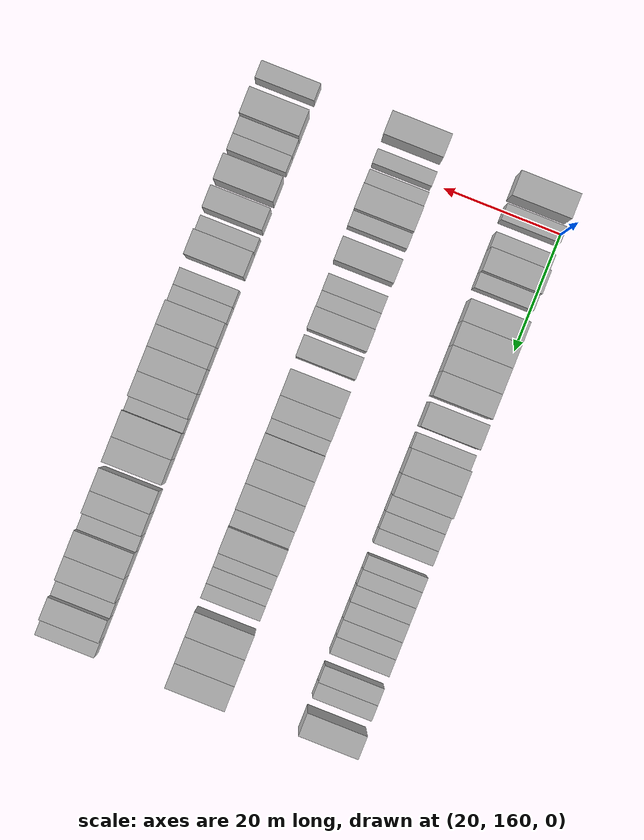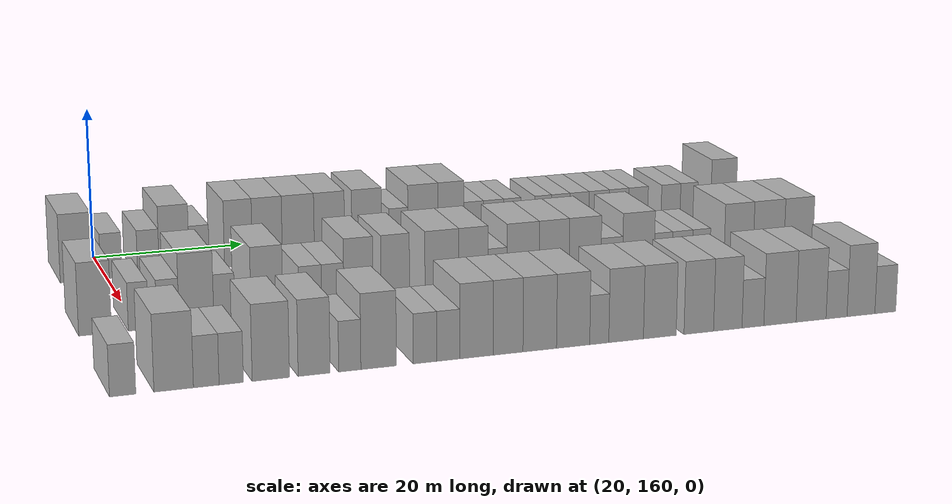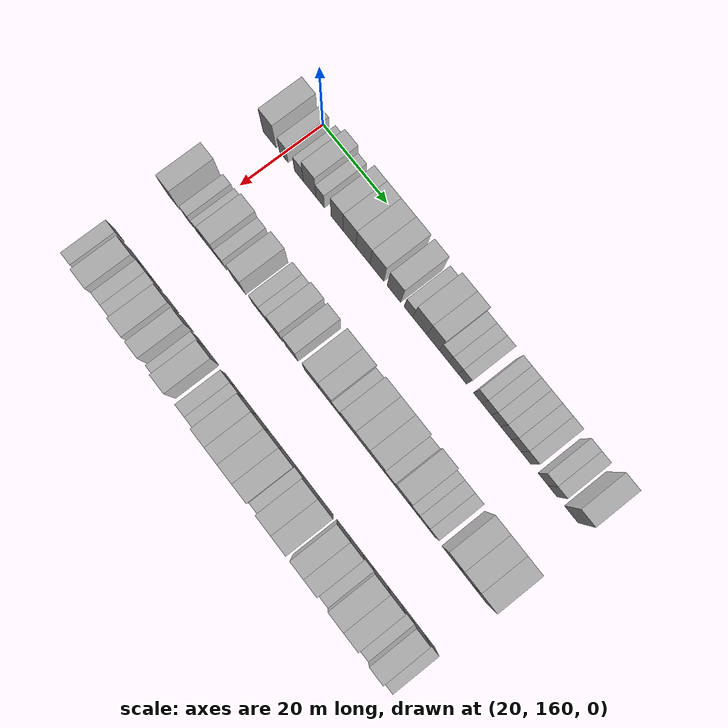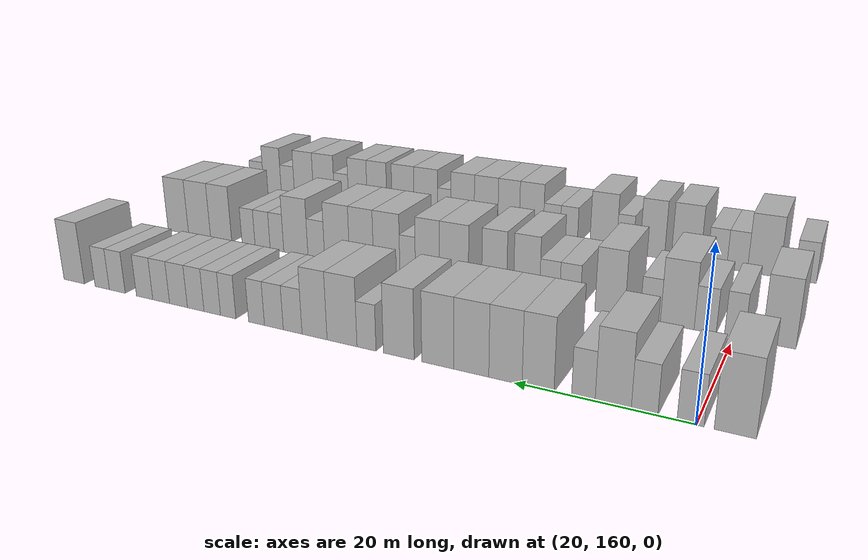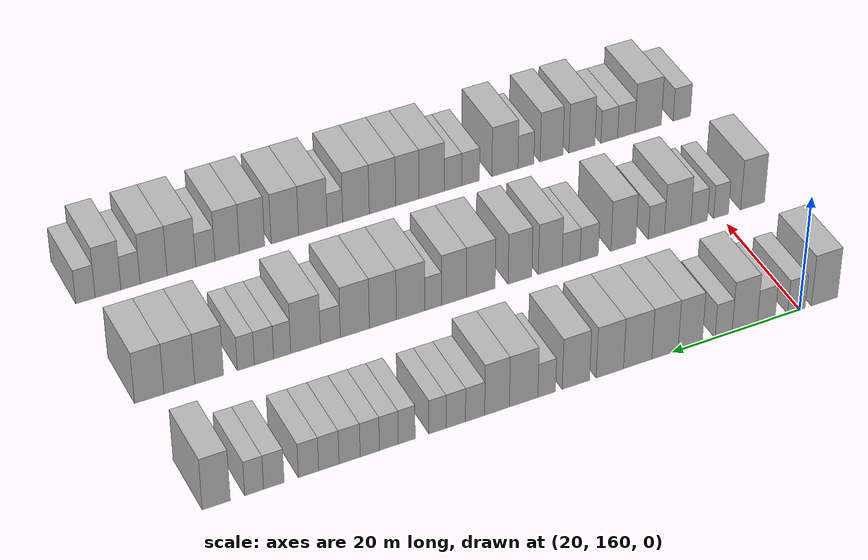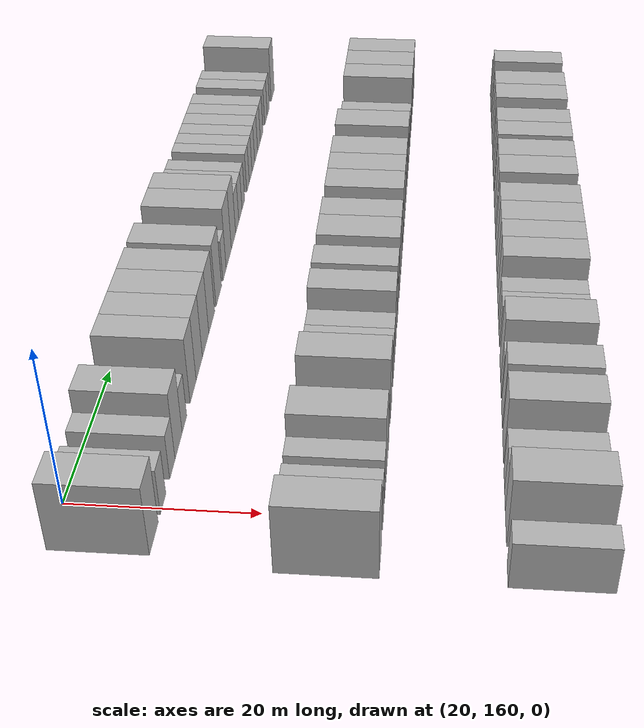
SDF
<sdf version="1.6">
 <world name="default">
  <model name="building_99">
   <static>1</static>
   <pose>25.0000 156.1459 0 0.000000 0.000000 0.000000</pose>
   <link name="link">
    <pose>0 0 4.50 0 0 0</pose>
    <collision name="collision"><geometry><box><size>10.0000 4.1679 9.0000</size></box></geometry></collision>
    <visual name="visual">
     <cast_shadows>0</cast_shadows>
     <geometry><box><size>10.0000 4.1679 9.0000</size></box></geometry>
     <material>
      <script>
       <uri>model://HANNAS_wall/materials/scripts</uri>
       <uri>model://HANNAS_wall/materials/textures</uri>
       <name>vrc/HANNAS_wall</name>
      </script>
     </material>
    </visual>
   </link>
  </model>
  <model name="building_100">
   <static>1</static>
   <pose>25.0000 160.6145 0 0.000000 0.000000 0.000000</pose>
   <link name="link">
    <pose>0 0 3.00 0 0 0</pose>
    <collision name="collision"><geometry><box><size>10.0000 2.7693 6.0000</size></box></geometry></collision>
    <visual name="visual">
     <cast_shadows>0</cast_shadows>
     <geometry><box><size>10.0000 2.7693 6.0000</size></box></geometry>
     <material>
      <script>
       <uri>model://HANNAS_wall/materials/scripts</uri>
       <uri>model://HANNAS_wall/materials/textures</uri>
       <name>vrc/HANNAS_wall</name>
      </script>
     </material>
    </visual>
   </link>
  </model>
  <model name="building_101">
   <static>1</static>
   <pose>25.0000 165.4070 0 0.000000 0.000000 0.000000</pose>
   <link name="link">
    <pose>0 0 3.00 0 0 0</pose>
    <collision name="collision"><geometry><box><size>10.0000 2.8158 6.0000</size></box></geometry></collision>
    <visual name="visual">
     <cast_shadows>0</cast_shadows>
     <geometry><box><size>10.0000 2.8158 6.0000</size></box></geometry>
     <material>
      <script>
       <uri>model://HANNAS_wall/materials/scripts</uri>
       <uri>model://HANNAS_wall/materials/textures</uri>
       <name>vrc/HANNAS_wall</name>
      </script>
     </material>
    </visual>
   </link>
  </model>
  <model name="building_102">
   <static>1</static>
   <pose>25.0000 168.7871 0 0.000000 0.000000 0.000000</pose>
   <link name="link">
    <pose>0 0 4.50 0 0 0</pose>
    <collision name="collision"><geometry><box><size>10.0000 3.9444 9.0000</size></box></geometry></collision>
    <visual name="visual">
     <cast_shadows>0</cast_shadows>
     <geometry><box><size>10.0000 3.9444 9.0000</size></box></geometry>
     <material>
      <script>
       <uri>model://HANNAS_wall/materials/scripts</uri>
       <uri>model://HANNAS_wall/materials/textures</uri>
       <name>vrc/HANNAS_wall</name>
      </script>
     </material>
    </visual>
   </link>
  </model>
  <model name="building_103">
   <static>1</static>
   <pose>25.0000 172.0795 0 0.000000 0.000000 0.000000</pose>
   <link name="link">
    <pose>0 0 3.00 0 0 0</pose>
    <collision name="collision"><geometry><box><size>10.0000 2.6404 6.0000</size></box></geometry></collision>
    <visual name="visual">
     <cast_shadows>0</cast_shadows>
     <geometry><box><size>10.0000 2.6404 6.0000</size></box></geometry>
     <material>
      <script>
       <uri>model://HANNAS_wall/materials/scripts</uri>
       <uri>model://HANNAS_wall/materials/textures</uri>
       <name>vrc/HANNAS_wall</name>
      </script>
     </material>
    </visual>
   </link>
  </model>
  <model name="building_104">
   <static>1</static>
   <pose>25.0000 177.2628 0 0.000000 0.000000 0.000000</pose>
   <link name="link">
    <pose>0 0 4.50 0 0 0</pose>
    <collision name="collision"><geometry><box><size>10.0000 3.7262 9.0000</size></box></geometry></collision>
    <visual name="visual">
     <cast_shadows>0</cast_shadows>
     <geometry><box><size>10.0000 3.7262 9.0000</size></box></geometry>
     <material>
      <script>
       <uri>model://HANNAS_wall/materials/scripts</uri>
       <uri>model://HANNAS_wall/materials/textures</uri>
       <name>vrc/HANNAS_wall</name>
      </script>
     </material>
    </visual>
   </link>
  </model>
  <model name="building_105">
   <static>1</static>
   <pose>25.0000 181.1314 0 0.000000 0.000000 0.000000</pose>
   <link name="link">
    <pose>0 0 4.50 0 0 0</pose>
    <collision name="collision"><geometry><box><size>10.0000 4.0110 9.0000</size></box></geometry></collision>
    <visual name="visual">
     <cast_shadows>0</cast_shadows>
     <geometry><box><size>10.0000 4.0110 9.0000</size></box></geometry>
     <material>
      <script>
       <uri>model://HANNAS_wall/materials/scripts</uri>
       <uri>model://HANNAS_wall/materials/textures</uri>
       <name>vrc/HANNAS_wall</name>
      </script>
     </material>
    </visual>
   </link>
  </model>
  <model name="building_106">
   <static>1</static>
   <pose>25.0000 185.3044 0 0.000000 0.000000 0.000000</pose>
   <link name="link">
    <pose>0 0 4.50 0 0 0</pose>
    <collision name="collision"><geometry><box><size>10.0000 4.3349 9.0000</size></box></geometry></collision>
    <visual name="visual">
     <cast_shadows>0</cast_shadows>
     <geometry><box><size>10.0000 4.3349 9.0000</size></box></geometry>
     <material>
      <script>
       <uri>model://HANNAS_wall/materials/scripts</uri>
       <uri>model://HANNAS_wall/materials/textures</uri>
       <name>vrc/HANNAS_wall</name>
      </script>
     </material>
    </visual>
   </link>
  </model>
  <model name="building_107">
   <static>1</static>
   <pose>25.0000 189.5412 0 0.000000 0.000000 0.000000</pose>
   <link name="link">
    <pose>0 0 4.50 0 0 0</pose>
    <collision name="collision"><geometry><box><size>10.0000 4.1389 9.0000</size></box></geometry></collision>
    <visual name="visual">
     <cast_shadows>0</cast_shadows>
     <geometry><box><size>10.0000 4.1389 9.0000</size></box></geometry>
     <material>
      <script>
       <uri>model://HANNAS_wall/materials/scripts</uri>
       <uri>model://HANNAS_wall/materials/textures</uri>
       <name>vrc/HANNAS_wall</name>
      </script>
     </material>
    </visual>
   </link>
  </model>
  <model name="building_108">
   <static>1</static>
   <pose>25.0000 194.6650 0 0.000000 0.000000 0.000000</pose>
   <link name="link">
    <pose>0 0 4.50 0 0 0</pose>
    <collision name="collision"><geometry><box><size>10.0000 4.1087 9.0000</size></box></geometry></collision>
    <visual name="visual">
     <cast_shadows>0</cast_shadows>
     <geometry><box><size>10.0000 4.1087 9.0000</size></box></geometry>
     <material>
      <script>
       <uri>model://HANNAS_wall/materials/scripts</uri>
       <uri>model://HANNAS_wall/materials/textures</uri>
       <name>vrc/HANNAS_wall</name>
      </script>
     </material>
    </visual>
   </link>
  </model>
  <model name="building_109">
   <static>1</static>
   <pose>25.0000 199.0300 0 0.000000 0.000000 0.000000</pose>
   <link name="link">
    <pose>0 0 3.00 0 0 0</pose>
    <collision name="collision"><geometry><box><size>10.0000 2.6212 6.0000</size></box></geometry></collision>
    <visual name="visual">
     <cast_shadows>0</cast_shadows>
     <geometry><box><size>10.0000 2.6212 6.0000</size></box></geometry>
     <material>
      <script>
       <uri>model://HANNAS_wall/materials/scripts</uri>
       <uri>model://HANNAS_wall/materials/textures</uri>
       <name>vrc/HANNAS_wall</name>
      </script>
     </material>
    </visual>
   </link>
  </model>
  <model name="building_110">
   <static>1</static>
   <pose>25.0000 202.4560 0 0.000000 0.000000 0.000000</pose>
   <link name="link">
    <pose>0 0 4.50 0 0 0</pose>
    <collision name="collision"><geometry><box><size>10.0000 4.2308 9.0000</size></box></geometry></collision>
    <visual name="visual">
     <cast_shadows>0</cast_shadows>
     <geometry><box><size>10.0000 4.2308 9.0000</size></box></geometry>
     <material>
      <script>
       <uri>model://HANNAS_wall/materials/scripts</uri>
       <uri>model://HANNAS_wall/materials/textures</uri>
       <name>vrc/HANNAS_wall</name>
      </script>
     </material>
    </visual>
   </link>
  </model>
  <model name="building_111">
   <static>1</static>
   <pose>25.0000 206.3911 0 0.000000 0.000000 0.000000</pose>
   <link name="link">
    <pose>0 0 4.50 0 0 0</pose>
    <collision name="collision"><geometry><box><size>10.0000 3.6393 9.0000</size></box></geometry></collision>
    <visual name="visual">
     <cast_shadows>0</cast_shadows>
     <geometry><box><size>10.0000 3.6393 9.0000</size></box></geometry>
     <material>
      <script>
       <uri>model://HANNAS_wall/materials/scripts</uri>
       <uri>model://HANNAS_wall/materials/textures</uri>
       <name>vrc/HANNAS_wall</name>
      </script>
     </material>
    </visual>
   </link>
  </model>
  <model name="building_112">
   <static>1</static>
   <pose>25.0000 209.6090 0 0.000000 0.000000 0.000000</pose>
   <link name="link">
    <pose>0 0 3.00 0 0 0</pose>
    <collision name="collision"><geometry><box><size>10.0000 2.7966 6.0000</size></box></geometry></collision>
    <visual name="visual">
     <cast_shadows>0</cast_shadows>
     <geometry><box><size>10.0000 2.7966 6.0000</size></box></geometry>
     <material>
      <script>
       <uri>model://HANNAS_wall/materials/scripts</uri>
       <uri>model://HANNAS_wall/materials/textures</uri>
       <name>vrc/HANNAS_wall</name>
      </script>
     </material>
    </visual>
   </link>
  </model>
  <model name="building_113">
   <static>1</static>
   <pose>25.0000 212.4356 0 0.000000 0.000000 0.000000</pose>
   <link name="link">
    <pose>0 0 3.00 0 0 0</pose>
    <collision name="collision"><geometry><box><size>10.0000 2.8567 6.0000</size></box></geometry></collision>
    <visual name="visual">
     <cast_shadows>0</cast_shadows>
     <geometry><box><size>10.0000 2.8567 6.0000</size></box></geometry>
     <material>
      <script>
       <uri>model://HANNAS_wall/materials/scripts</uri>
       <uri>model://HANNAS_wall/materials/textures</uri>
       <name>vrc/HANNAS_wall</name>
      </script>
     </material>
    </visual>
   </link>
  </model>
  <model name="building_114">
   <static>1</static>
   <pose>25.0000 215.0895 0 0.000000 0.000000 0.000000</pose>
   <link name="link">
    <pose>0 0 3.00 0 0 0</pose>
    <collision name="collision"><geometry><box><size>10.0000 2.4511 6.0000</size></box></geometry></collision>
    <visual name="visual">
     <cast_shadows>0</cast_shadows>
     <geometry><box><size>10.0000 2.4511 6.0000</size></box></geometry>
     <material>
      <script>
       <uri>model://HANNAS_wall/materials/scripts</uri>
       <uri>model://HANNAS_wall/materials/textures</uri>
       <name>vrc/HANNAS_wall</name>
      </script>
     </material>
    </visual>
   </link>
  </model>
  <model name="building_115">
   <static>1</static>
   <pose>25.0000 219.5354 0 0.000000 0.000000 0.000000</pose>
   <link name="link">
    <pose>0 0 3.00 0 0 0</pose>
    <collision name="collision"><geometry><box><size>10.0000 2.4409 6.0000</size></box></geometry></collision>
    <visual name="visual">
     <cast_shadows>0</cast_shadows>
     <geometry><box><size>10.0000 2.4409 6.0000</size></box></geometry>
     <material>
      <script>
       <uri>model://HANNAS_wall/materials/scripts</uri>
       <uri>model://HANNAS_wall/materials/textures</uri>
       <name>vrc/HANNAS_wall</name>
      </script>
     </material>
    </visual>
   </link>
  </model>
  <model name="building_116">
   <static>1</static>
   <pose>25.0000 222.1003 0 0.000000 0.000000 0.000000</pose>
   <link name="link">
    <pose>0 0 3.00 0 0 0</pose>
    <collision name="collision"><geometry><box><size>10.0000 2.6889 6.0000</size></box></geometry></collision>
    <visual name="visual">
     <cast_shadows>0</cast_shadows>
     <geometry><box><size>10.0000 2.6889 6.0000</size></box></geometry>
     <material>
      <script>
       <uri>model://HANNAS_wall/materials/scripts</uri>
       <uri>model://HANNAS_wall/materials/textures</uri>
       <name>vrc/HANNAS_wall</name>
      </script>
     </material>
    </visual>
   </link>
  </model>
  <model name="building_117">
   <static>1</static>
   <pose>25.0000 224.8164 0 0.000000 0.000000 0.000000</pose>
   <link name="link">
    <pose>0 0 3.00 0 0 0</pose>
    <collision name="collision"><geometry><box><size>10.0000 2.7432 6.0000</size></box></geometry></collision>
    <visual name="visual">
     <cast_shadows>0</cast_shadows>
     <geometry><box><size>10.0000 2.7432 6.0000</size></box></geometry>
     <material>
      <script>
       <uri>model://HANNAS_wall/materials/scripts</uri>
       <uri>model://HANNAS_wall/materials/textures</uri>
       <name>vrc/HANNAS_wall</name>
      </script>
     </material>
    </visual>
   </link>
  </model>
  <model name="building_118">
   <static>1</static>
   <pose>25.0000 227.6877 0 0.000000 0.000000 0.000000</pose>
   <link name="link">
    <pose>0 0 3.00 0 0 0</pose>
    <collision name="collision"><geometry><box><size>10.0000 2.9994 6.0000</size></box></geometry></collision>
    <visual name="visual">
     <cast_shadows>0</cast_shadows>
     <geometry><box><size>10.0000 2.9994 6.0000</size></box></geometry>
     <material>
      <script>
       <uri>model://HANNAS_wall/materials/scripts</uri>
       <uri>model://HANNAS_wall/materials/textures</uri>
       <name>vrc/HANNAS_wall</name>
      </script>
     </material>
    </visual>
   </link>
  </model>
  <model name="building_119">
   <static>1</static>
   <pose>25.0000 230.6287 0 0.000000 0.000000 0.000000</pose>
   <link name="link">
    <pose>0 0 3.00 0 0 0</pose>
    <collision name="collision"><geometry><box><size>10.0000 2.8824 6.0000</size></box></geometry></collision>
    <visual name="visual">
     <cast_shadows>0</cast_shadows>
     <geometry><box><size>10.0000 2.8824 6.0000</size></box></geometry>
     <material>
      <script>
       <uri>model://HANNAS_wall/materials/scripts</uri>
       <uri>model://HANNAS_wall/materials/textures</uri>
       <name>vrc/HANNAS_wall</name>
      </script>
     </material>
    </visual>
   </link>
  </model>
  <model name="building_120">
   <static>1</static>
   <pose>25.0000 233.4946 0 0.000000 0.000000 0.000000</pose>
   <link name="link">
    <pose>0 0 3.00 0 0 0</pose>
    <collision name="collision"><geometry><box><size>10.0000 2.8493 6.0000</size></box></geometry></collision>
    <visual name="visual">
     <cast_shadows>0</cast_shadows>
     <geometry><box><size>10.0000 2.8493 6.0000</size></box></geometry>
     <material>
      <script>
       <uri>model://HANNAS_wall/materials/scripts</uri>
       <uri>model://HANNAS_wall/materials/textures</uri>
       <name>vrc/HANNAS_wall</name>
      </script>
     </material>
    </visual>
   </link>
  </model>
  <model name="building_121">
   <static>1</static>
   <pose>25.0000 238.3489 0 0.000000 0.000000 0.000000</pose>
   <link name="link">
    <pose>0 0 3.00 0 0 0</pose>
    <collision name="collision"><geometry><box><size>10.0000 2.8593 6.0000</size></box></geometry></collision>
    <visual name="visual">
     <cast_shadows>0</cast_shadows>
     <geometry><box><size>10.0000 2.8593 6.0000</size></box></geometry>
     <material>
      <script>
       <uri>model://HANNAS_wall/materials/scripts</uri>
       <uri>model://HANNAS_wall/materials/textures</uri>
       <name>vrc/HANNAS_wall</name>
      </script>
     </material>
    </visual>
   </link>
  </model>
  <model name="building_122">
   <static>1</static>
   <pose>25.0000 241.0852 0 0.000000 0.000000 0.000000</pose>
   <link name="link">
    <pose>0 0 3.00 0 0 0</pose>
    <collision name="collision"><geometry><box><size>10.0000 2.6133 6.0000</size></box></geometry></collision>
    <visual name="visual">
     <cast_shadows>0</cast_shadows>
     <geometry><box><size>10.0000 2.6133 6.0000</size></box></geometry>
     <material>
      <script>
       <uri>model://HANNAS_wall/materials/scripts</uri>
       <uri>model://HANNAS_wall/materials/textures</uri>
       <name>vrc/HANNAS_wall</name>
      </script>
     </material>
    </visual>
   </link>
  </model>
  <model name="building_123">
   <static>1</static>
   <pose>25.0000 246.3215 0 0.000000 0.000000 0.000000</pose>
   <link name="link">
    <pose>0 0 4.50 0 0 0</pose>
    <collision name="collision"><geometry><box><size>10.0000 3.8594 9.0000</size></box></geometry></collision>
    <visual name="visual">
     <cast_shadows>0</cast_shadows>
     <geometry><box><size>10.0000 3.8594 9.0000</size></box></geometry>
     <material>
      <script>
       <uri>model://HANNAS_wall/materials/scripts</uri>
       <uri>model://HANNAS_wall/materials/textures</uri>
       <name>vrc/HANNAS_wall</name>
      </script>
     </material>
    </visual>
   </link>
  </model>
  <model name="building_226">
   <static>1</static>
   <pose>47.0000 154.7542 0 0.000000 0.000000 0.000000</pose>
   <link name="link">
    <pose>0 0 4.50 0 0 0</pose>
    <collision name="collision"><geometry><box><size>10.0000 3.9195 9.0000</size></box></geometry></collision>
    <visual name="visual">
     <cast_shadows>0</cast_shadows>
     <geometry><box><size>10.0000 3.9195 9.0000</size></box></geometry>
     <material>
      <script>
       <uri>model://HANNAS_wall/materials/scripts</uri>
       <uri>model://HANNAS_wall/materials/textures</uri>
       <name>vrc/HANNAS_wall</name>
      </script>
     </material>
    </visual>
   </link>
  </model>
  <model name="building_227">
   <static>1</static>
   <pose>47.0000 159.9321 0 0.000000 0.000000 0.000000</pose>
   <link name="link">
    <pose>0 0 3.00 0 0 0</pose>
    <collision name="collision"><geometry><box><size>10.0000 2.4363 6.0000</size></box></geometry></collision>
    <visual name="visual">
     <cast_shadows>0</cast_shadows>
     <geometry><box><size>10.0000 2.4363 6.0000</size></box></geometry>
     <material>
      <script>
       <uri>model://HANNAS_wall/materials/scripts</uri>
       <uri>model://HANNAS_wall/materials/textures</uri>
       <name>vrc/HANNAS_wall</name>
      </script>
     </material>
    </visual>
   </link>
  </model>
  <model name="building_228">
   <static>1</static>
   <pose>47.0000 163.4997 0 0.000000 0.000000 0.000000</pose>
   <link name="link">
    <pose>0 0 3.00 0 0 0</pose>
    <collision name="collision"><geometry><box><size>10.0000 2.6988 6.0000</size></box></geometry></collision>
    <visual name="visual">
     <cast_shadows>0</cast_shadows>
     <geometry><box><size>10.0000 2.6988 6.0000</size></box></geometry>
     <material>
      <script>
       <uri>model://HANNAS_wall/materials/scripts</uri>
       <uri>model://HANNAS_wall/materials/textures</uri>
       <name>vrc/HANNAS_wall</name>
      </script>
     </material>
    </visual>
   </link>
  </model>
  <model name="building_229">
   <static>1</static>
   <pose>47.0000 166.9710 0 0.000000 0.000000 0.000000</pose>
   <link name="link">
    <pose>0 0 4.50 0 0 0</pose>
    <collision name="collision"><geometry><box><size>10.0000 4.2438 9.0000</size></box></geometry></collision>
    <visual name="visual">
     <cast_shadows>0</cast_shadows>
     <geometry><box><size>10.0000 4.2438 9.0000</size></box></geometry>
     <material>
      <script>
       <uri>model://HANNAS_wall/materials/scripts</uri>
       <uri>model://HANNAS_wall/materials/textures</uri>
       <name>vrc/HANNAS_wall</name>
      </script>
     </material>
    </visual>
   </link>
  </model>
  <model name="building_230">
   <static>1</static>
   <pose>47.0000 170.3910 0 0.000000 0.000000 0.000000</pose>
   <link name="link">
    <pose>0 0 3.00 0 0 0</pose>
    <collision name="collision"><geometry><box><size>10.0000 2.5962 6.0000</size></box></geometry></collision>
    <visual name="visual">
     <cast_shadows>0</cast_shadows>
     <geometry><box><size>10.0000 2.5962 6.0000</size></box></geometry>
     <material>
      <script>
       <uri>model://HANNAS_wall/materials/scripts</uri>
       <uri>model://HANNAS_wall/materials/textures</uri>
       <name>vrc/HANNAS_wall</name>
      </script>
     </material>
    </visual>
   </link>
  </model>
  <model name="building_231">
   <static>1</static>
   <pose>47.0000 175.6767 0 0.000000 0.000000 0.000000</pose>
   <link name="link">
    <pose>0 0 4.50 0 0 0</pose>
    <collision name="collision"><geometry><box><size>10.0000 3.9751 9.0000</size></box></geometry></collision>
    <visual name="visual">
     <cast_shadows>0</cast_shadows>
     <geometry><box><size>10.0000 3.9751 9.0000</size></box></geometry>
     <material>
      <script>
       <uri>model://HANNAS_wall/materials/scripts</uri>
       <uri>model://HANNAS_wall/materials/textures</uri>
       <name>vrc/HANNAS_wall</name>
      </script>
     </material>
    </visual>
   </link>
  </model>
  <model name="building_232">
   <static>1</static>
   <pose>47.0000 181.0941 0 0.000000 0.000000 0.000000</pose>
   <link name="link">
    <pose>0 0 3.00 0 0 0</pose>
    <collision name="collision"><geometry><box><size>10.0000 2.8597 6.0000</size></box></geometry></collision>
    <visual name="visual">
     <cast_shadows>0</cast_shadows>
     <geometry><box><size>10.0000 2.8597 6.0000</size></box></geometry>
     <material>
      <script>
       <uri>model://HANNAS_wall/materials/scripts</uri>
       <uri>model://HANNAS_wall/materials/textures</uri>
       <name>vrc/HANNAS_wall</name>
      </script>
     </material>
    </visual>
   </link>
  </model>
  <model name="building_233">
   <static>1</static>
   <pose>47.0000 183.9356 0 0.000000 0.000000 0.000000</pose>
   <link name="link">
    <pose>0 0 3.00 0 0 0</pose>
    <collision name="collision"><geometry><box><size>10.0000 2.8232 6.0000</size></box></geometry></collision>
    <visual name="visual">
     <cast_shadows>0</cast_shadows>
     <geometry><box><size>10.0000 2.8232 6.0000</size></box></geometry>
     <material>
      <script>
       <uri>model://HANNAS_wall/materials/scripts</uri>
       <uri>model://HANNAS_wall/materials/textures</uri>
       <name>vrc/HANNAS_wall</name>
      </script>
     </material>
    </visual>
   </link>
  </model>
  <model name="building_234">
   <static>1</static>
   <pose>47.0000 187.2130 0 0.000000 0.000000 0.000000</pose>
   <link name="link">
    <pose>0 0 4.50 0 0 0</pose>
    <collision name="collision"><geometry><box><size>10.0000 3.7316 9.0000</size></box></geometry></collision>
    <visual name="visual">
     <cast_shadows>0</cast_shadows>
     <geometry><box><size>10.0000 3.7316 9.0000</size></box></geometry>
     <material>
      <script>
       <uri>model://HANNAS_wall/materials/scripts</uri>
       <uri>model://HANNAS_wall/materials/textures</uri>
       <name>vrc/HANNAS_wall</name>
      </script>
     </material>
    </visual>
   </link>
  </model>
  <model name="building_235">
   <static>1</static>
   <pose>47.0000 191.9176 0 0.000000 0.000000 0.000000</pose>
   <link name="link">
    <pose>0 0 4.50 0 0 0</pose>
    <collision name="collision"><geometry><box><size>10.0000 3.6777 9.0000</size></box></geometry></collision>
    <visual name="visual">
     <cast_shadows>0</cast_shadows>
     <geometry><box><size>10.0000 3.6777 9.0000</size></box></geometry>
     <material>
      <script>
       <uri>model://HANNAS_wall/materials/scripts</uri>
       <uri>model://HANNAS_wall/materials/textures</uri>
       <name>vrc/HANNAS_wall</name>
      </script>
     </material>
    </visual>
   </link>
  </model>
  <model name="building_236">
   <static>1</static>
   <pose>47.0000 197.9709 0 0.000000 0.000000 0.000000</pose>
   <link name="link">
    <pose>0 0 4.50 0 0 0</pose>
    <collision name="collision"><geometry><box><size>10.0000 4.4290 9.0000</size></box></geometry></collision>
    <visual name="visual">
     <cast_shadows>0</cast_shadows>
     <geometry><box><size>10.0000 4.4290 9.0000</size></box></geometry>
     <material>
      <script>
       <uri>model://HANNAS_wall/materials/scripts</uri>
       <uri>model://HANNAS_wall/materials/textures</uri>
       <name>vrc/HANNAS_wall</name>
      </script>
     </material>
    </visual>
   </link>
  </model>
  <model name="building_237">
   <static>1</static>
   <pose>47.0000 202.0887 0 0.000000 0.000000 0.000000</pose>
   <link name="link">
    <pose>0 0 4.50 0 0 0</pose>
    <collision name="collision"><geometry><box><size>10.0000 3.8066 9.0000</size></box></geometry></collision>
    <visual name="visual">
     <cast_shadows>0</cast_shadows>
     <geometry><box><size>10.0000 3.8066 9.0000</size></box></geometry>
     <material>
      <script>
       <uri>model://HANNAS_wall/materials/scripts</uri>
       <uri>model://HANNAS_wall/materials/textures</uri>
       <name>vrc/HANNAS_wall</name>
      </script>
     </material>
    </visual>
   </link>
  </model>
  <model name="building_238">
   <static>1</static>
   <pose>47.0000 205.2436 0 0.000000 0.000000 0.000000</pose>
   <link name="link">
    <pose>0 0 3.00 0 0 0</pose>
    <collision name="collision"><geometry><box><size>10.0000 2.5033 6.0000</size></box></geometry></collision>
    <visual name="visual">
     <cast_shadows>0</cast_shadows>
     <geometry><box><size>10.0000 2.5033 6.0000</size></box></geometry>
     <material>
      <script>
       <uri>model://HANNAS_wall/materials/scripts</uri>
       <uri>model://HANNAS_wall/materials/textures</uri>
       <name>vrc/HANNAS_wall</name>
      </script>
     </material>
    </visual>
   </link>
  </model>
  <model name="building_239">
   <static>1</static>
   <pose>47.0000 208.6481 0 0.000000 0.000000 0.000000</pose>
   <link name="link">
    <pose>0 0 4.50 0 0 0</pose>
    <collision name="collision"><geometry><box><size>10.0000 4.3056 9.0000</size></box></geometry></collision>
    <visual name="visual">
     <cast_shadows>0</cast_shadows>
     <geometry><box><size>10.0000 4.3056 9.0000</size></box></geometry>
     <material>
      <script>
       <uri>model://HANNAS_wall/materials/scripts</uri>
       <uri>model://HANNAS_wall/materials/textures</uri>
       <name>vrc/HANNAS_wall</name>
      </script>
     </material>
    </visual>
   </link>
  </model>
  <model name="building_240">
   <static>1</static>
   <pose>47.0000 212.8194 0 0.000000 0.000000 0.000000</pose>
   <link name="link">
    <pose>0 0 4.50 0 0 0</pose>
    <collision name="collision"><geometry><box><size>10.0000 4.0370 9.0000</size></box></geometry></collision>
    <visual name="visual">
     <cast_shadows>0</cast_shadows>
     <geometry><box><size>10.0000 4.0370 9.0000</size></box></geometry>
     <material>
      <script>
       <uri>model://HANNAS_wall/materials/scripts</uri>
       <uri>model://HANNAS_wall/materials/textures</uri>
       <name>vrc/HANNAS_wall</name>
      </script>
     </material>
    </visual>
   </link>
  </model>
  <model name="building_241">
   <static>1</static>
   <pose>47.0000 217.0004 0 0.000000 0.000000 0.000000</pose>
   <link name="link">
    <pose>0 0 4.50 0 0 0</pose>
    <collision name="collision"><geometry><box><size>10.0000 4.3250 9.0000</size></box></geometry></collision>
    <visual name="visual">
     <cast_shadows>0</cast_shadows>
     <geometry><box><size>10.0000 4.3250 9.0000</size></box></geometry>
     <material>
      <script>
       <uri>model://HANNAS_wall/materials/scripts</uri>
       <uri>model://HANNAS_wall/materials/textures</uri>
       <name>vrc/HANNAS_wall</name>
      </script>
     </material>
    </visual>
   </link>
  </model>
  <model name="building_242">
   <static>1</static>
   <pose>47.0000 220.6399 0 0.000000 0.000000 0.000000</pose>
   <link name="link">
    <pose>0 0 3.00 0 0 0</pose>
    <collision name="collision"><geometry><box><size>10.0000 2.9540 6.0000</size></box></geometry></collision>
    <visual name="visual">
     <cast_shadows>0</cast_shadows>
     <geometry><box><size>10.0000 2.9540 6.0000</size></box></geometry>
     <material>
      <script>
       <uri>model://HANNAS_wall/materials/scripts</uri>
       <uri>model://HANNAS_wall/materials/textures</uri>
       <name>vrc/HANNAS_wall</name>
      </script>
     </material>
    </visual>
   </link>
  </model>
  <model name="building_243">
   <static>1</static>
   <pose>47.0000 224.2985 0 0.000000 0.000000 0.000000</pose>
   <link name="link">
    <pose>0 0 4.50 0 0 0</pose>
    <collision name="collision"><geometry><box><size>10.0000 4.3633 9.0000</size></box></geometry></collision>
    <visual name="visual">
     <cast_shadows>0</cast_shadows>
     <geometry><box><size>10.0000 4.3633 9.0000</size></box></geometry>
     <material>
      <script>
       <uri>model://HANNAS_wall/materials/scripts</uri>
       <uri>model://HANNAS_wall/materials/textures</uri>
       <name>vrc/HANNAS_wall</name>
      </script>
     </material>
    </visual>
   </link>
  </model>
  <model name="building_244">
   <static>1</static>
   <pose>47.0000 227.7331 0 0.000000 0.000000 0.000000</pose>
   <link name="link">
    <pose>0 0 3.00 0 0 0</pose>
    <collision name="collision"><geometry><box><size>10.0000 2.5059 6.0000</size></box></geometry></collision>
    <visual name="visual">
     <cast_shadows>0</cast_shadows>
     <geometry><box><size>10.0000 2.5059 6.0000</size></box></geometry>
     <material>
      <script>
       <uri>model://HANNAS_wall/materials/scripts</uri>
       <uri>model://HANNAS_wall/materials/textures</uri>
       <name>vrc/HANNAS_wall</name>
      </script>
     </material>
    </visual>
   </link>
  </model>
  <model name="building_245">
   <static>1</static>
   <pose>47.0000 230.3922 0 0.000000 0.000000 0.000000</pose>
   <link name="link">
    <pose>0 0 3.00 0 0 0</pose>
    <collision name="collision"><geometry><box><size>10.0000 2.8123 6.0000</size></box></geometry></collision>
    <visual name="visual">
     <cast_shadows>0</cast_shadows>
     <geometry><box><size>10.0000 2.8123 6.0000</size></box></geometry>
     <material>
      <script>
       <uri>model://HANNAS_wall/materials/scripts</uri>
       <uri>model://HANNAS_wall/materials/textures</uri>
       <name>vrc/HANNAS_wall</name>
      </script>
     </material>
    </visual>
   </link>
  </model>
  <model name="building_246">
   <static>1</static>
   <pose>47.0000 233.0299 0 0.000000 0.000000 0.000000</pose>
   <link name="link">
    <pose>0 0 3.00 0 0 0</pose>
    <collision name="collision"><geometry><box><size>10.0000 2.4630 6.0000</size></box></geometry></collision>
    <visual name="visual">
     <cast_shadows>0</cast_shadows>
     <geometry><box><size>10.0000 2.4630 6.0000</size></box></geometry>
     <material>
      <script>
       <uri>model://HANNAS_wall/materials/scripts</uri>
       <uri>model://HANNAS_wall/materials/textures</uri>
       <name>vrc/HANNAS_wall</name>
      </script>
     </material>
    </visual>
   </link>
  </model>
  <model name="building_247">
   <static>1</static>
   <pose>47.0000 238.3239 0 0.000000 0.000000 0.000000</pose>
   <link name="link">
    <pose>0 0 4.50 0 0 0</pose>
    <collision name="collision"><geometry><box><size>10.0000 4.1250 9.0000</size></box></geometry></collision>
    <visual name="visual">
     <cast_shadows>0</cast_shadows>
     <geometry><box><size>10.0000 4.1250 9.0000</size></box></geometry>
     <material>
      <script>
       <uri>model://HANNAS_wall/materials/scripts</uri>
       <uri>model://HANNAS_wall/materials/textures</uri>
       <name>vrc/HANNAS_wall</name>
      </script>
     </material>
    </visual>
   </link>
  </model>
  <model name="building_248">
   <static>1</static>
   <pose>47.0000 242.5906 0 0.000000 0.000000 0.000000</pose>
   <link name="link">
    <pose>0 0 4.50 0 0 0</pose>
    <collision name="collision"><geometry><box><size>10.0000 4.4084 9.0000</size></box></geometry></collision>
    <visual name="visual">
     <cast_shadows>0</cast_shadows>
     <geometry><box><size>10.0000 4.4084 9.0000</size></box></geometry>
     <material>
      <script>
       <uri>model://HANNAS_wall/materials/scripts</uri>
       <uri>model://HANNAS_wall/materials/textures</uri>
       <name>vrc/HANNAS_wall</name>
      </script>
     </material>
    </visual>
   </link>
  </model>
  <model name="building_249">
   <static>1</static>
   <pose>47.0000 246.8796 0 0.000000 0.000000 0.000000</pose>
   <link name="link">
    <pose>0 0 4.50 0 0 0</pose>
    <collision name="collision"><geometry><box><size>10.0000 4.1695 9.0000</size></box></geometry></collision>
    <visual name="visual">
     <cast_shadows>0</cast_shadows>
     <geometry><box><size>10.0000 4.1695 9.0000</size></box></geometry>
     <material>
      <script>
       <uri>model://HANNAS_wall/materials/scripts</uri>
       <uri>model://HANNAS_wall/materials/textures</uri>
       <name>vrc/HANNAS_wall</name>
      </script>
     </material>
    </visual>
   </link>
  </model>
  <model name="building_348">
   <static>1</static>
   <pose>69.0000 154.0189 0 0.000000 0.000000 0.000000</pose>
   <link name="link">
    <pose>0 0 3.00 0 0 0</pose>
    <collision name="collision"><geometry><box><size>10.0000 2.9185 6.0000</size></box></geometry></collision>
    <visual name="visual">
     <cast_shadows>0</cast_shadows>
     <geometry><box><size>10.0000 2.9185 6.0000</size></box></geometry>
     <material>
      <script>
       <uri>model://HANNAS_wall/materials/scripts</uri>
       <uri>model://HANNAS_wall/materials/textures</uri>
       <name>vrc/HANNAS_wall</name>
      </script>
     </material>
    </visual>
   </link>
  </model>
  <model name="building_349">
   <static>1</static>
   <pose>69.0000 159.6898 0 0.000000 0.000000 0.000000</pose>
   <link name="link">
    <pose>0 0 4.50 0 0 0</pose>
    <collision name="collision"><geometry><box><size>10.0000 4.4233 9.0000</size></box></geometry></collision>
    <visual name="visual">
     <cast_shadows>0</cast_shadows>
     <geometry><box><size>10.0000 4.4233 9.0000</size></box></geometry>
     <material>
      <script>
       <uri>model://HANNAS_wall/materials/scripts</uri>
       <uri>model://HANNAS_wall/materials/textures</uri>
       <name>vrc/HANNAS_wall</name>
      </script>
     </material>
    </visual>
   </link>
  </model>
  <model name="building_350">
   <static>1</static>
   <pose>69.0000 163.3485 0 0.000000 0.000000 0.000000</pose>
   <link name="link">
    <pose>0 0 3.00 0 0 0</pose>
    <collision name="collision"><geometry><box><size>10.0000 2.8940 6.0000</size></box></geometry></collision>
    <visual name="visual">
     <cast_shadows>0</cast_shadows>
     <geometry><box><size>10.0000 2.8940 6.0000</size></box></geometry>
     <material>
      <script>
       <uri>model://HANNAS_wall/materials/scripts</uri>
       <uri>model://HANNAS_wall/materials/textures</uri>
       <name>vrc/HANNAS_wall</name>
      </script>
     </material>
    </visual>
   </link>
  </model>
  <model name="building_351">
   <static>1</static>
   <pose>69.0000 166.1783 0 0.000000 0.000000 0.000000</pose>
   <link name="link">
    <pose>0 0 3.00 0 0 0</pose>
    <collision name="collision"><geometry><box><size>10.0000 2.7656 6.0000</size></box></geometry></collision>
    <visual name="visual">
     <cast_shadows>0</cast_shadows>
     <geometry><box><size>10.0000 2.7656 6.0000</size></box></geometry>
     <material>
      <script>
       <uri>model://HANNAS_wall/materials/scripts</uri>
       <uri>model://HANNAS_wall/materials/textures</uri>
       <name>vrc/HANNAS_wall</name>
      </script>
     </material>
    </visual>
   </link>
  </model>
  <model name="building_352">
   <static>1</static>
   <pose>69.0000 170.7016 0 0.000000 0.000000 0.000000</pose>
   <link name="link">
    <pose>0 0 4.50 0 0 0</pose>
    <collision name="collision"><geometry><box><size>10.0000 4.2811 9.0000</size></box></geometry></collision>
    <visual name="visual">
     <cast_shadows>0</cast_shadows>
     <geometry><box><size>10.0000 4.2811 9.0000</size></box></geometry>
     <material>
      <script>
       <uri>model://HANNAS_wall/materials/scripts</uri>
       <uri>model://HANNAS_wall/materials/textures</uri>
       <name>vrc/HANNAS_wall</name>
      </script>
     </material>
    </visual>
   </link>
  </model>
  <model name="building_353">
   <static>1</static>
   <pose>69.0000 175.7031 0 0.000000 0.000000 0.000000</pose>
   <link name="link">
    <pose>0 0 4.50 0 0 0</pose>
    <collision name="collision"><geometry><box><size>10.0000 3.7219 9.0000</size></box></geometry></collision>
    <visual name="visual">
     <cast_shadows>0</cast_shadows>
     <geometry><box><size>10.0000 3.7219 9.0000</size></box></geometry>
     <material>
      <script>
       <uri>model://HANNAS_wall/materials/scripts</uri>
       <uri>model://HANNAS_wall/materials/textures</uri>
       <name>vrc/HANNAS_wall</name>
      </script>
     </material>
    </visual>
   </link>
  </model>
  <model name="building_354">
   <static>1</static>
   <pose>69.0000 179.8641 0 0.000000 0.000000 0.000000</pose>
   <link name="link">
    <pose>0 0 3.00 0 0 0</pose>
    <collision name="collision"><geometry><box><size>10.0000 2.6000 6.0000</size></box></geometry></collision>
    <visual name="visual">
     <cast_shadows>0</cast_shadows>
     <geometry><box><size>10.0000 2.6000 6.0000</size></box></geometry>
     <material>
      <script>
       <uri>model://HANNAS_wall/materials/scripts</uri>
       <uri>model://HANNAS_wall/materials/textures</uri>
       <name>vrc/HANNAS_wall</name>
      </script>
     </material>
    </visual>
   </link>
  </model>
  <model name="building_355">
   <static>1</static>
   <pose>69.0000 183.2650 0 0.000000 0.000000 0.000000</pose>
   <link name="link">
    <pose>0 0 4.50 0 0 0</pose>
    <collision name="collision"><geometry><box><size>10.0000 4.2018 9.0000</size></box></geometry></collision>
    <visual name="visual">
     <cast_shadows>0</cast_shadows>
     <geometry><box><size>10.0000 4.2018 9.0000</size></box></geometry>
     <material>
      <script>
       <uri>model://HANNAS_wall/materials/scripts</uri>
       <uri>model://HANNAS_wall/materials/textures</uri>
       <name>vrc/HANNAS_wall</name>
      </script>
     </material>
    </visual>
   </link>
  </model>
  <model name="building_356">
   <static>1</static>
   <pose>69.0000 188.7863 0 0.000000 0.000000 0.000000</pose>
   <link name="link">
    <pose>0 0 3.00 0 0 0</pose>
    <collision name="collision"><geometry><box><size>10.0000 2.8407 6.0000</size></box></geometry></collision>
    <visual name="visual">
     <cast_shadows>0</cast_shadows>
     <geometry><box><size>10.0000 2.8407 6.0000</size></box></geometry>
     <material>
      <script>
       <uri>model://HANNAS_wall/materials/scripts</uri>
       <uri>model://HANNAS_wall/materials/textures</uri>
       <name>vrc/HANNAS_wall</name>
      </script>
     </material>
    </visual>
   </link>
  </model>
  <model name="building_357">
   <static>1</static>
   <pose>69.0000 191.5878 0 0.000000 0.000000 0.000000</pose>
   <link name="link">
    <pose>0 0 3.00 0 0 0</pose>
    <collision name="collision"><geometry><box><size>10.0000 2.7623 6.0000</size></box></geometry></collision>
    <visual name="visual">
     <cast_shadows>0</cast_shadows>
     <geometry><box><size>10.0000 2.7623 6.0000</size></box></geometry>
     <material>
      <script>
       <uri>model://HANNAS_wall/materials/scripts</uri>
       <uri>model://HANNAS_wall/materials/textures</uri>
       <name>vrc/HANNAS_wall</name>
      </script>
     </material>
    </visual>
   </link>
  </model>
  <model name="building_358">
   <static>1</static>
   <pose>69.0000 194.9893 0 0.000000 0.000000 0.000000</pose>
   <link name="link">
    <pose>0 0 4.50 0 0 0</pose>
    <collision name="collision"><geometry><box><size>10.0000 4.0409 9.0000</size></box></geometry></collision>
    <visual name="visual">
     <cast_shadows>0</cast_shadows>
     <geometry><box><size>10.0000 4.0409 9.0000</size></box></geometry>
     <material>
      <script>
       <uri>model://HANNAS_wall/materials/scripts</uri>
       <uri>model://HANNAS_wall/materials/textures</uri>
       <name>vrc/HANNAS_wall</name>
      </script>
     </material>
    </visual>
   </link>
  </model>
  <model name="building_359">
   <static>1</static>
   <pose>69.0000 198.8453 0 0.000000 0.000000 0.000000</pose>
   <link name="link">
    <pose>0 0 4.50 0 0 0</pose>
    <collision name="collision"><geometry><box><size>10.0000 3.6710 9.0000</size></box></geometry></collision>
    <visual name="visual">
     <cast_shadows>0</cast_shadows>
     <geometry><box><size>10.0000 3.6710 9.0000</size></box></geometry>
     <material>
      <script>
       <uri>model://HANNAS_wall/materials/scripts</uri>
       <uri>model://HANNAS_wall/materials/textures</uri>
       <name>vrc/HANNAS_wall</name>
      </script>
     </material>
    </visual>
   </link>
  </model>
  <model name="building_360">
   <static>1</static>
   <pose>69.0000 202.7540 0 0.000000 0.000000 0.000000</pose>
   <link name="link">
    <pose>0 0 4.50 0 0 0</pose>
    <collision name="collision"><geometry><box><size>10.0000 4.1465 9.0000</size></box></geometry></collision>
    <visual name="visual">
     <cast_shadows>0</cast_shadows>
     <geometry><box><size>10.0000 4.1465 9.0000</size></box></geometry>
     <material>
      <script>
       <uri>model://HANNAS_wall/materials/scripts</uri>
       <uri>model://HANNAS_wall/materials/textures</uri>
       <name>vrc/HANNAS_wall</name>
      </script>
     </material>
    </visual>
   </link>
  </model>
  <model name="building_361">
   <static>1</static>
   <pose>69.0000 206.9029 0 0.000000 0.000000 0.000000</pose>
   <link name="link">
    <pose>0 0 4.50 0 0 0</pose>
    <collision name="collision"><geometry><box><size>10.0000 4.1511 9.0000</size></box></geometry></collision>
    <visual name="visual">
     <cast_shadows>0</cast_shadows>
     <geometry><box><size>10.0000 4.1511 9.0000</size></box></geometry>
     <material>
      <script>
       <uri>model://HANNAS_wall/materials/scripts</uri>
       <uri>model://HANNAS_wall/materials/textures</uri>
       <name>vrc/HANNAS_wall</name>
      </script>
     </material>
    </visual>
   </link>
  </model>
  <model name="building_362">
   <static>1</static>
   <pose>69.0000 210.1794 0 0.000000 0.000000 0.000000</pose>
   <link name="link">
    <pose>0 0 3.00 0 0 0</pose>
    <collision name="collision"><geometry><box><size>10.0000 2.4020 6.0000</size></box></geometry></collision>
    <visual name="visual">
     <cast_shadows>0</cast_shadows>
     <geometry><box><size>10.0000 2.4020 6.0000</size></box></geometry>
     <material>
      <script>
       <uri>model://HANNAS_wall/materials/scripts</uri>
       <uri>model://HANNAS_wall/materials/textures</uri>
       <name>vrc/HANNAS_wall</name>
      </script>
     </material>
    </visual>
   </link>
  </model>
  <model name="building_363">
   <static>1</static>
   <pose>69.0000 213.5772 0 0.000000 0.000000 0.000000</pose>
   <link name="link">
    <pose>0 0 4.50 0 0 0</pose>
    <collision name="collision"><geometry><box><size>10.0000 4.3938 9.0000</size></box></geometry></collision>
    <visual name="visual">
     <cast_shadows>0</cast_shadows>
     <geometry><box><size>10.0000 4.3938 9.0000</size></box></geometry>
     <material>
      <script>
       <uri>model://HANNAS_wall/materials/scripts</uri>
       <uri>model://HANNAS_wall/materials/textures</uri>
       <name>vrc/HANNAS_wall</name>
      </script>
     </material>
    </visual>
   </link>
  </model>
  <model name="building_364">
   <static>1</static>
   <pose>69.0000 217.8711 0 0.000000 0.000000 0.000000</pose>
   <link name="link">
    <pose>0 0 4.50 0 0 0</pose>
    <collision name="collision"><geometry><box><size>10.0000 4.1939 9.0000</size></box></geometry></collision>
    <visual name="visual">
     <cast_shadows>0</cast_shadows>
     <geometry><box><size>10.0000 4.1939 9.0000</size></box></geometry>
     <material>
      <script>
       <uri>model://HANNAS_wall/materials/scripts</uri>
       <uri>model://HANNAS_wall/materials/textures</uri>
       <name>vrc/HANNAS_wall</name>
      </script>
     </material>
    </visual>
   </link>
  </model>
  <model name="building_365">
   <static>1</static>
   <pose>69.0000 222.8828 0 0.000000 0.000000 0.000000</pose>
   <link name="link">
    <pose>0 0 4.50 0 0 0</pose>
    <collision name="collision"><geometry><box><size>10.0000 3.8295 9.0000</size></box></geometry></collision>
    <visual name="visual">
     <cast_shadows>0</cast_shadows>
     <geometry><box><size>10.0000 3.8295 9.0000</size></box></geometry>
     <material>
      <script>
       <uri>model://HANNAS_wall/materials/scripts</uri>
       <uri>model://HANNAS_wall/materials/textures</uri>
       <name>vrc/HANNAS_wall</name>
      </script>
     </material>
    </visual>
   </link>
  </model>
  <model name="building_366">
   <static>1</static>
   <pose>69.0000 226.6543 0 0.000000 0.000000 0.000000</pose>
   <link name="link">
    <pose>0 0 4.50 0 0 0</pose>
    <collision name="collision"><geometry><box><size>10.0000 3.7135 9.0000</size></box></geometry></collision>
    <visual name="visual">
     <cast_shadows>0</cast_shadows>
     <geometry><box><size>10.0000 3.7135 9.0000</size></box></geometry>
     <material>
      <script>
       <uri>model://HANNAS_wall/materials/scripts</uri>
       <uri>model://HANNAS_wall/materials/textures</uri>
       <name>vrc/HANNAS_wall</name>
      </script>
     </material>
    </visual>
   </link>
  </model>
  <model name="building_367">
   <static>1</static>
   <pose>69.0000 229.9475 0 0.000000 0.000000 0.000000</pose>
   <link name="link">
    <pose>0 0 3.00 0 0 0</pose>
    <collision name="collision"><geometry><box><size>10.0000 2.8729 6.0000</size></box></geometry></collision>
    <visual name="visual">
     <cast_shadows>0</cast_shadows>
     <geometry><box><size>10.0000 2.8729 6.0000</size></box></geometry>
     <material>
      <script>
       <uri>model://HANNAS_wall/materials/scripts</uri>
       <uri>model://HANNAS_wall/materials/textures</uri>
       <name>vrc/HANNAS_wall</name>
      </script>
     </material>
    </visual>
   </link>
  </model>
  <model name="building_368">
   <static>1</static>
   <pose>69.0000 233.5241 0 0.000000 0.000000 0.000000</pose>
   <link name="link">
    <pose>0 0 4.50 0 0 0</pose>
    <collision name="collision"><geometry><box><size>10.0000 4.2803 9.0000</size></box></geometry></collision>
    <visual name="visual">
     <cast_shadows>0</cast_shadows>
     <geometry><box><size>10.0000 4.2803 9.0000</size></box></geometry>
     <material>
      <script>
       <uri>model://HANNAS_wall/materials/scripts</uri>
       <uri>model://HANNAS_wall/materials/textures</uri>
       <name>vrc/HANNAS_wall</name>
      </script>
     </material>
    </visual>
   </link>
  </model>
  <model name="building_369">
   <static>1</static>
   <pose>69.0000 237.6714 0 0.000000 0.000000 0.000000</pose>
   <link name="link">
    <pose>0 0 4.50 0 0 0</pose>
    <collision name="collision"><geometry><box><size>10.0000 4.0144 9.0000</size></box></geometry></collision>
    <visual name="visual">
     <cast_shadows>0</cast_shadows>
     <geometry><box><size>10.0000 4.0144 9.0000</size></box></geometry>
     <material>
      <script>
       <uri>model://HANNAS_wall/materials/scripts</uri>
       <uri>model://HANNAS_wall/materials/textures</uri>
       <name>vrc/HANNAS_wall</name>
      </script>
     </material>
    </visual>
   </link>
  </model>
  <model name="building_370">
   <static>1</static>
   <pose>69.0000 241.0915 0 0.000000 0.000000 0.000000</pose>
   <link name="link">
    <pose>0 0 3.00 0 0 0</pose>
    <collision name="collision"><geometry><box><size>10.0000 2.8257 6.0000</size></box></geometry></collision>
    <visual name="visual">
     <cast_shadows>0</cast_shadows>
     <geometry><box><size>10.0000 2.8257 6.0000</size></box></geometry>
     <material>
      <script>
       <uri>model://HANNAS_wall/materials/scripts</uri>
       <uri>model://HANNAS_wall/materials/textures</uri>
       <name>vrc/HANNAS_wall</name>
      </script>
     </material>
    </visual>
   </link>
  </model>
  <model name="building_371">
   <static>1</static>
   <pose>69.0000 244.3934 0 0.000000 0.000000 0.000000</pose>
   <link name="link">
    <pose>0 0 4.50 0 0 0</pose>
    <collision name="collision"><geometry><box><size>10.0000 3.7782 9.0000</size></box></geometry></collision>
    <visual name="visual">
     <cast_shadows>0</cast_shadows>
     <geometry><box><size>10.0000 3.7782 9.0000</size></box></geometry>
     <material>
      <script>
       <uri>model://HANNAS_wall/materials/scripts</uri>
       <uri>model://HANNAS_wall/materials/textures</uri>
       <name>vrc/HANNAS_wall</name>
      </script>
     </material>
    </visual>
   </link>
  </model>
  <model name="building_372">
   <static>1</static>
   <pose>69.0000 247.7094 0 0.000000 0.000000 0.000000</pose>
   <link name="link">
    <pose>0 0 3.00 0 0 0</pose>
    <collision name="collision"><geometry><box><size>10.0000 2.8538 6.0000</size></box></geometry></collision>
    <visual name="visual">
     <cast_shadows>0</cast_shadows>
     <geometry><box><size>10.0000 2.8538 6.0000</size></box></geometry>
     <material>
      <script>
       <uri>model://HANNAS_wall/materials/scripts</uri>
       <uri>model://HANNAS_wall/materials/textures</uri>
       <name>vrc/HANNAS_wall</name>
      </script>
     </material>
    </visual>
   </link>
  </model>
 </world>
</sdf>
